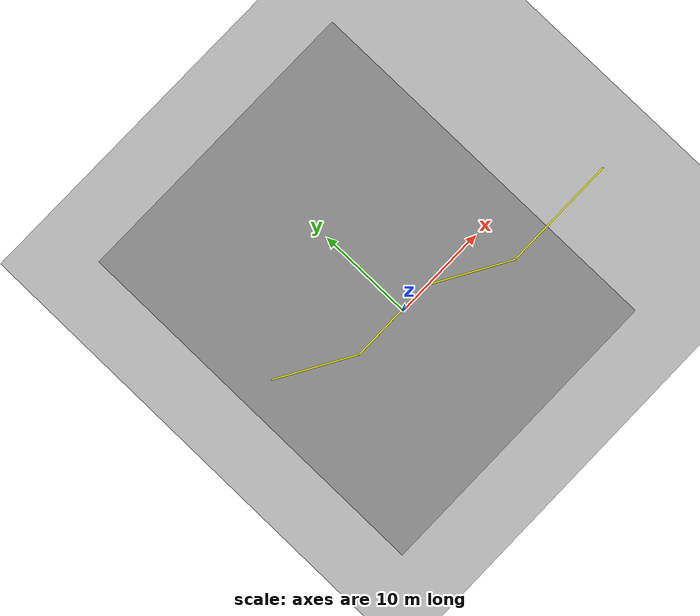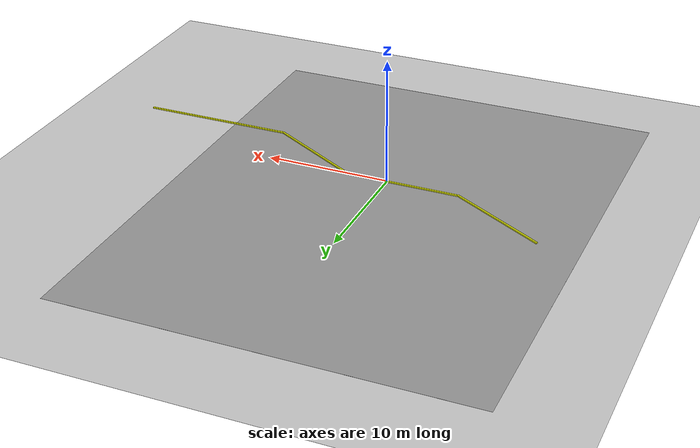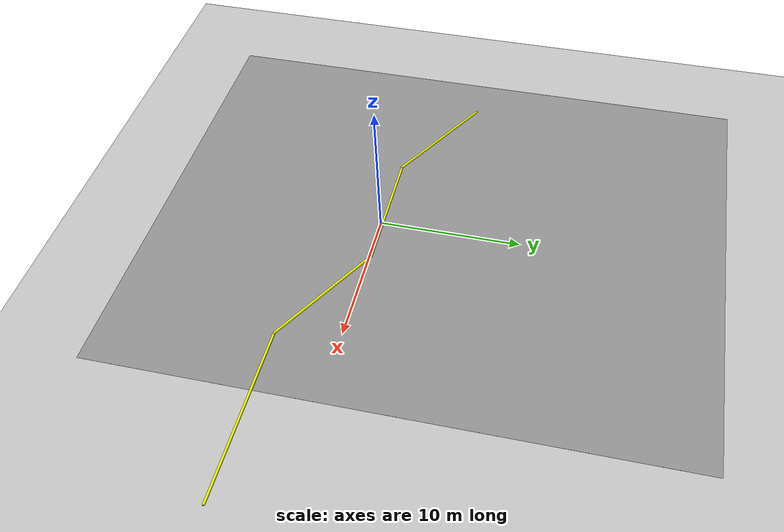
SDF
<sdf version="1.7">
 <world name="default">
  <light name="sun" type="directional">
   <pose>0 0 10 0 -0 0</pose>
   <diffuse>0.8 0.8 0.8 1</diffuse>
   <specular>0.2 0.2 0.2 1</specular>
   <attenuation>
    <range>1000</range>
    <constant>0.9</constant>
    <linear>0.01</linear>
    <quadratic>0.001</quadratic>
   </attenuation>
   <direction>-0.5 0.1 -0.9</direction>
   <spot><inner_angle>0</inner_angle><outer_angle>0</outer_angle><falloff>0</falloff></spot>
  </light>
  <model name="ground_plane">
   <static>1</static>
   <link name="link">
    <collision name="collision">
     <geometry><plane><normal>0 0 1</normal><size>100 100</size></plane></geometry>
     <surface>
      <contact><collide_bitmask>65535</collide_bitmask></contact>
      <friction><ode><mu>100</mu><mu2>50</mu2></ode></friction>
     </surface>
    </collision>
    <visual name="visual">
     <cast_shadows>0</cast_shadows>
     <geometry><plane><normal>0 0 1</normal><size>100 100</size></plane></geometry>
     <material>
      <script><uri>file://media/materials/scripts/gazebo.material</uri><name>Gazebo/Grey</name></script>
     </material>
    </visual>
   </link>
  </model>
  <gravity>0 0 -9.8</gravity>
  <magnetic_field>6e-06 2.3e-05 -4.2e-05</magnetic_field>
  <atmosphere type="adiabatic"/>
  <physics type="ode">
   <max_step_size>0.001</max_step_size>
   <real_time_factor>1</real_time_factor>
   <real_time_update_rate>1000</real_time_update_rate>
  </physics>
  <scene><ambient>0.4 0.4 0.4 1</ambient><background>0.7 0.7 0.7 1</background><shadows>1</shadows></scene>
  <spherical_coordinates>
   <surface_model>EARTH_WGS84</surface_model>
   <latitude_deg>0</latitude_deg>
   <longitude_deg>0</longitude_deg>
   <elevation>0</elevation>
   <heading_deg>0</heading_deg>
  </spherical_coordinates>
  <model name="line3">
   <pose>4.82937 0.058201 0 0 -0 0</pose>
   <link name="Wall_3">
    <collision name="Wall_3_Collision">
     <geometry><box><size>8.75 0.15 0.1</size></box></geometry>
     <pose>0 0 0.05 0 -0 0</pose>
    </collision>
    <visual name="Wall_3_Visual">
     <pose>0 0 0.05 0 -0 0</pose>
     <geometry><box><size>8.75 0.15 0.1</size></box></geometry>
     <material>
      <script><uri>file://media/materials/scripts/gazebo.material</uri><name>Gazebo/Grey</name></script>
      <ambient>0.945098 0.980392 0.0196078 1</ambient>
     </material>
     <meta><layer>0</layer></meta>
    </visual>
    <pose>-14.4183 2.21256 0 0 -0 -0.523588</pose>
   </link>
   <link name="Wall_4">
    <collision name="Wall_4_Collision">
     <geometry><box><size>9.25 0.15 0.1</size></box></geometry>
     <pose>0 0 0.05 0 -0 0</pose>
    </collision>
    <visual name="Wall_4_Visual">
     <pose>0 0 0.05 0 -0 0</pose>
     <geometry><box><size>9.25 0.15 0.1</size></box></geometry>
     <material>
      <script><uri>file://media/materials/scripts/gazebo.material</uri><name>Gazebo/Grey</name></script>
      <ambient>0.945098 0.980392 0.0196078 1</ambient>
     </material>
     <meta><layer>0</layer></meta>
    </visual>
    <pose>-6.14431 0.062555 0 0 -0 0</pose>
   </link>
   <link name="Wall_5">
    <collision name="Wall_5_Collision">
     <geometry><box><size>9 0.15 0.1</size></box></geometry>
     <pose>0 0 0.05 0 -0 0</pose>
    </collision>
    <visual name="Wall_5_Visual">
     <pose>0 0 0.05 0 -0 0</pose>
     <geometry><box><size>9 0.15 0.1</size></box></geometry>
     <material>
      <script><uri>file://media/materials/scripts/gazebo.material</uri><name>Gazebo/Grey</name></script>
      <ambient>0.945098 0.980392 0.0196078 1</ambient>
     </material>
     <meta><layer>0</layer></meta>
    </visual>
    <pose>2.23769 -2.14995 0 0 -0 -0.523617</pose>
   </link>
   <link name="Wall_6">
    <collision name="Wall_6_Collision">
     <geometry><box><size>12.25 0.15 0.1</size></box></geometry>
     <pose>0 0 0.05 0 -0 0</pose>
    </collision>
    <visual name="Wall_6_Visual">
     <pose>0 0 0.05 0 -0 0</pose>
     <geometry><box><size>12.25 0.15 0.1</size></box></geometry>
     <material>
      <script><uri>file://media/materials/scripts/gazebo.material</uri><name>Gazebo/Grey</name></script>
      <ambient>0.945098 0.980392 0.0196078 1</ambient>
     </material>
     <meta><layer>0</layer></meta>
    </visual>
    <pose>12.1197 -4.36245 0 0 -0 0</pose>
   </link>
   <static>1</static>
  </model>
  <model name="blackfloor">
   <pose>-0.70244 4.10194 0 0 -0 0</pose>
   <link name="Wall_0">
    <collision name="Wall_0_Collision">
     <geometry><box><size>40 32 0.001</size></box></geometry>
     <pose>0 0 0.0005 0 -0 0</pose>
    </collision>
    <visual name="Wall_0_Visual">
     <pose>0 0 0.0005 0 -0 0</pose>
     <geometry><box><size>40 32 0.001</size></box></geometry>
     <material>
      <script><uri>file://media/materials/scripts/gazebo.material</uri><name>Gazebo/Grey</name></script>
      <ambient>0 0 0 1</ambient>
     </material>
     <meta><layer>0</layer></meta>
    </visual>
    <pose>0 0 0 0 -0 1.5708</pose>
   </link>
   <static>1</static>
  </model>
 </world>
</sdf>
